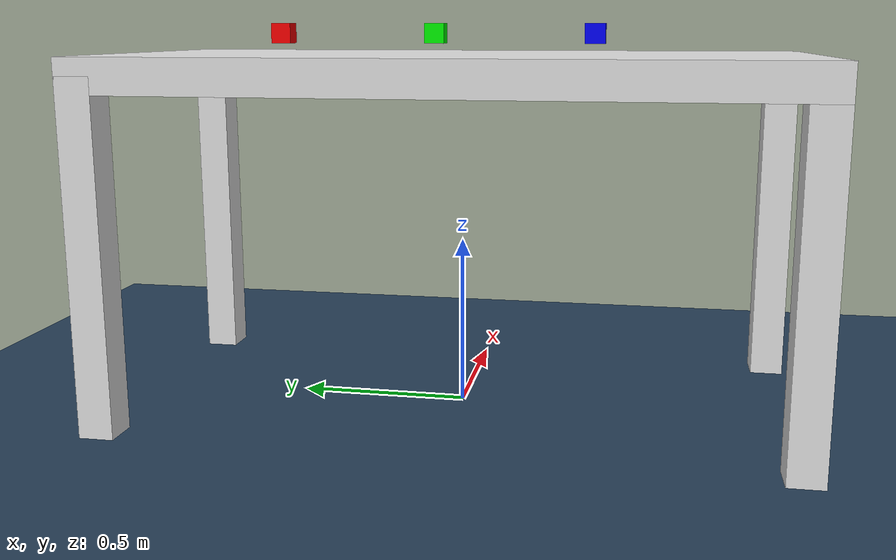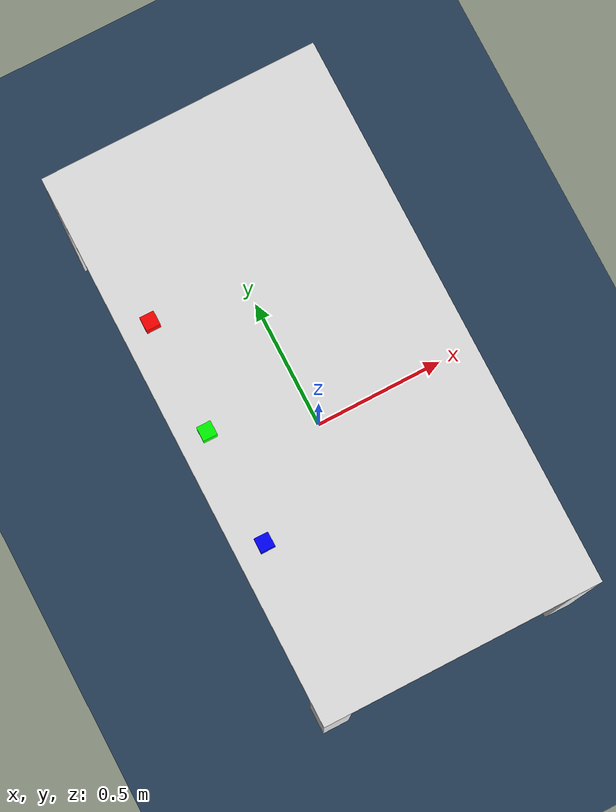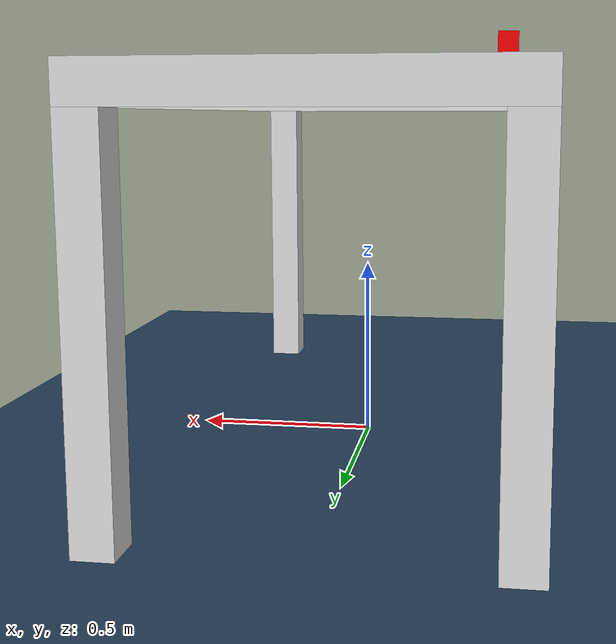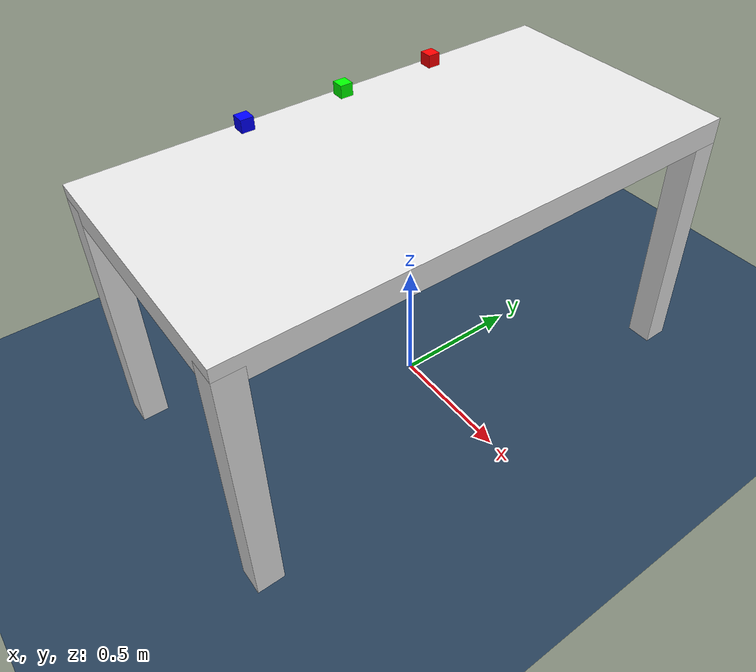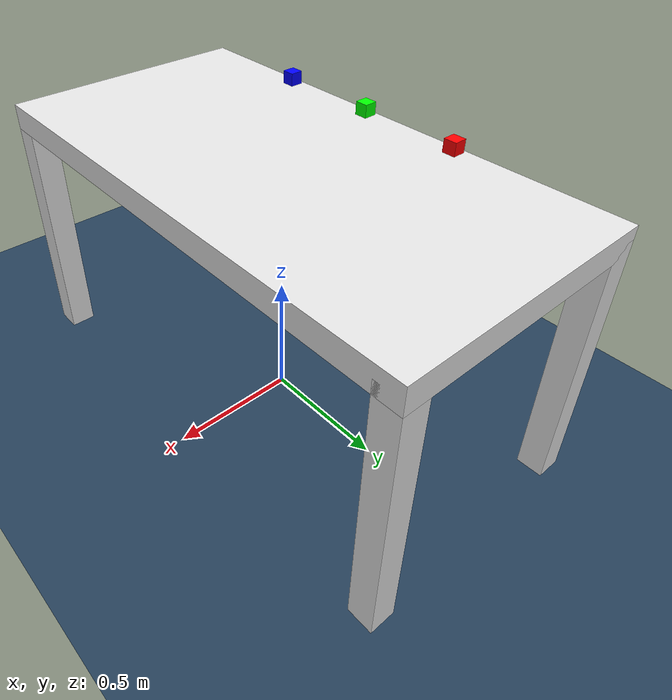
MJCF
<mujoco>
    <asset>
        <texture name="grid" type="2d" builtin="checker" width="512" height="512" rgb1=".1 .2 .3" rgb2=".2 .3 .4" />
        <material name="grid" texture="grid" texrepeat="1 1" texuniform="true" reflectance=".2" />
    </asset>

    <worldbody>
        <geom name="floor" size="0 0 .05" type="plane" material="grid" condim="4" friction="2 0.05 0.01" />
        <light diffuse=".5 .5 .5" pos="0 -1 5" dir="0 0 -1" />
        <light diffuse=".5 .5 .5" pos="0 1 5" dir="0 0 -1" />
    </worldbody>

    <worldbody>
        <body name="table" pos="0 0 1" quat="0.707 0.0 0.0 0.707">
            <geom type="box" size="1 .5 .05" rgba="0.9 0.9 .9 1" mass="6" condim="4" friction="2 0.05 0.01" />
            <geom type="box" pos=".95 .45 -.5" size=".05 .05 .5" rgba="0.9 0.9 .9 1" mass="1" />
            <geom type="box" pos="-.95 .45 -.5" size=".05 .05 .5" rgba="0.9 0.9 .9 1" mass="1" />
            <geom type="box" pos=".95 -.45 -.5" size=".05 .05 .5" rgba="0.9 0.9 .9 1" mass="1" />
            <geom type="box" pos="-.95 -.45 -.5" size=".05 .05 .5" rgba="0.9 0.9 .9 1" mass="1" />
        </body>

        <body name="cube_1" pos="-0.4 -0.4 1.110" >
            <freejoint/>
            <geom type="box" size=".025 .025 .025" rgba="0.0 0.0 1.0 1" mass="1" />
        </body>

        <body name="cube_2" pos="-0.4 0.4 1.110" >
            <freejoint/>
            <geom type="box" size=".025 .025 .025" rgba="1.0 0.0 0.0 1" mass="1" />
        </body>

        <body name="cube_3" pos="-0.4 0.0 1.110" >
            <freejoint/>
            <geom type="box" size=".025 .025 .025" rgba="0.0 1.0 0.0 1" mass="0.1" />
        </body>
    </worldbody>
</mujoco>
